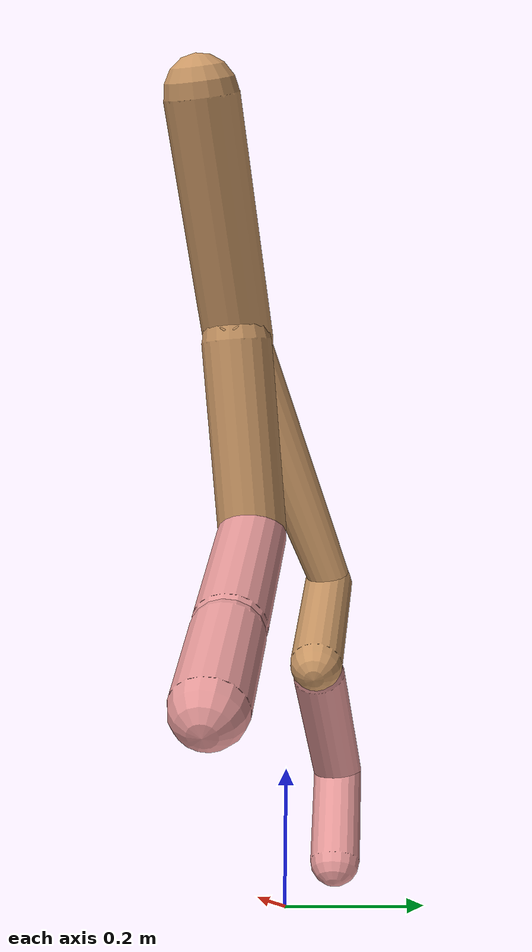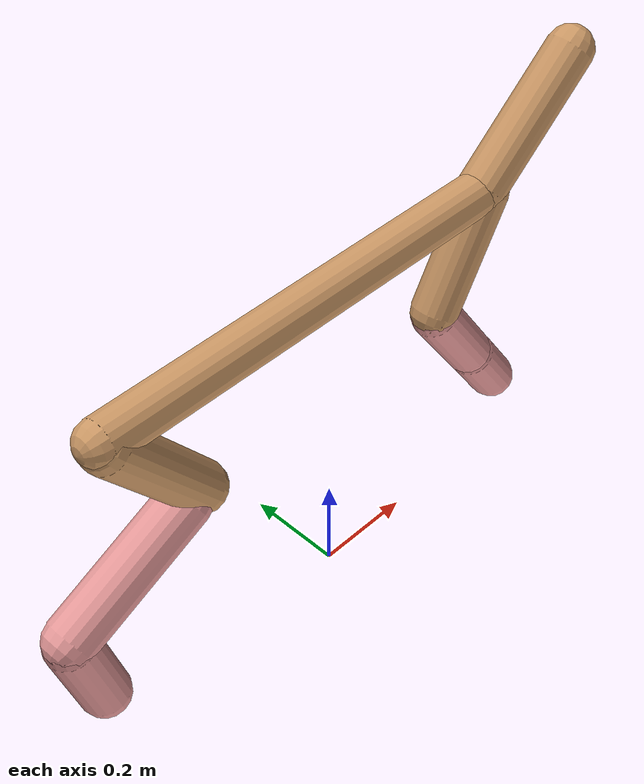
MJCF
<mujoco model="cheetah">
  <compiler angle="radian" coordinate="local" inertiafromgeom="true" settotalmass="14" />
  <default>
    <joint armature=".1" damping=".01" limited="true" solimplimit="0 .8 .03" solreflimit=".02 1" stiffness="8" />
    <geom conaffinity="0" condim="3" contype="1" friction="0.8 .1 .1" rgba="0.8 0.6 .4 1" solimp="0.0 0.8 0.01" solref="0.02 1" />
    <motor ctrllimited="true" ctrlrange="-1 1" />
  </default>
  <size nstack="300000" nuser_geom="1" />
  <option gravity="0 0 -9.81" timestep="0.01" />
  <worldbody>
    <body name="torso" pos="0.0 0.0 0.6965747955488232">
      <joint armature="0" axis="1 0 0" damping="0" limited="false" name="ignorex" pos="0 0 0" stiffness="0" type="slide" />
      <joint armature="0" axis="0 0 1" damping="0" limited="false" name="ignorez" pos="0 0 0" stiffness="0" type="slide" />
      <joint armature="0" axis="0 1 0" damping="0" limited="false" name="ignorey" pos="0 0 0" stiffness="0" type="hinge" />
      <geom fromto="-0.5 0.0 0.0 0.41298814921578914 0.0 0.0" name="torso" size="0.04326083582312732" type="capsule" />
      <geom axisangle="0 1 0 .87" name="head" pos="0.5129881492157892 0.0 0.1" size="0.046820073628109235 0.15" type="capsule" />

      <body name="bthigh" pos="-.5 0 0">
        <joint axis="0 1 0" damping="6" name="bthigh" pos="0 0 0" range="-.52 1.05" stiffness="240" type="hinge" />
        <geom axisangle="0 1 0 -3.8" name="bthigh" pos="0.0997433765408992 0.0 -0.12966638950316894" size="0.049257769253400634 0.14457910623269438" type="capsule" />
        <body name="bshin" pos="0.15948675308179838 0.0 -0.2493327790063379">
          <joint axis="0 1 0" damping="4.5" name="bshin" pos="0 0 0" range="-.785 .785" stiffness="180" type="hinge" />
          <geom axisangle="0 1 0 -2.03" name="bshin" pos="-0.13961055983103393 0.0 -0.06980527991551697" rgba="0.9 0.6 0.6 1" size="0.049257769253400634 0.1495645926545114" type="capsule" />
          <body name="bfoot" pos="-0.27922111966206786 0.0 -0.13961055983103393">
            <joint axis="0 1 0" damping="3" name="bfoot" pos="0 0 0" range="-.4 .785" stiffness="120" type="hinge" />
            <geom axisangle="0 1 0 -.27" name="bfoot" pos="0.029919379529022693 0.0 -0.09673932714384005" rgba="0.9 0.6 0.6 1" size="0.049257769253400634 0.0937271447301605" type="capsule" />
            <inertial mass="10" />
          </body>
        </body>
      </body>
      <body name="fthigh" pos="0.4129881492157892 0.0 0.0">
        <joint axis="0 1 0" damping="4.5" name="fthigh" pos="0 0 0" range="-1.5 0.8" stiffness="180" type="hinge" />
        <geom axisangle="0 1 0 .52" name="fthigh" pos="-0.06633326716837303 0.0 -0.11371417228863945" size="0.046791284191145636 0.12572287421604936" type="capsule" />
        <body name="fshin" pos="-0.13266653433674605 0.0 -0.2274283445772789">
          <joint axis="0 1 0" damping="3" name="fshin" pos="0 0 0" range="-1.2 1.1" stiffness="120" type="hinge" />
          <geom axisangle="0 1 0 -.6" name="fshin" pos="0.06160426337595583 0.0 -0.08529821082824653" rgba="0.9 0.6 0.6 1" size="0.046791284191145636 0.10020018546542278" type="capsule" />
          <body name="ffoot" pos="0.12320852675191166 0.0 -0.17059642165649305">
            <joint axis="0 1 0" damping="1.5" name="ffoot" pos="0 0 0" range="-3.1 -0.3" stiffness="60" type="hinge" />
            <geom axisangle="0 1 0 -.6" name="ffoot" pos="0.04292886262599236 0.0 -0.06677823075154368" rgba="0.9 0.6 0.6 1" size="0.046791284191145636 0.06616993379792072" type="capsule" />
            <inertial mass="10" />
          </body>
        </body>
      </body>
    </body>
  </worldbody>
  <actuator>
    <motor gear="120" joint="bthigh" name="bthigh" />
    <motor gear="90" joint="bshin" name="bshin" />
    <motor gear="60" joint="bfoot" name="bfoot" />
    <motor gear="120" joint="fthigh" name="fthigh" />
    <motor gear="60" joint="fshin" name="fshin" />
    <motor gear="30" joint="ffoot" name="ffoot" />
  </actuator>
</mujoco>
